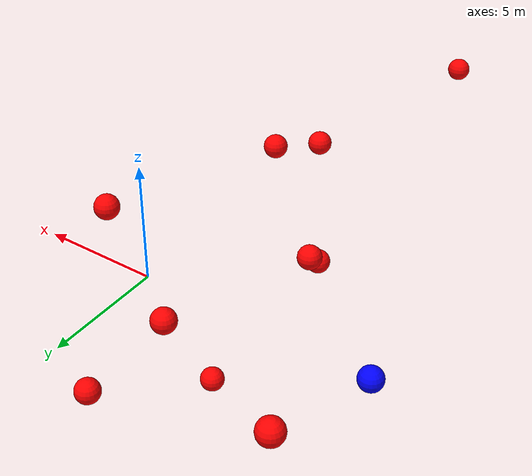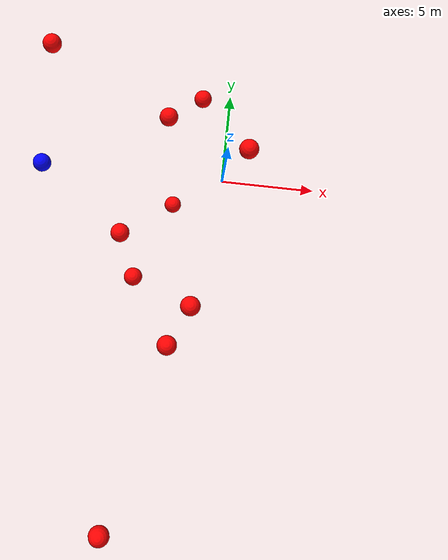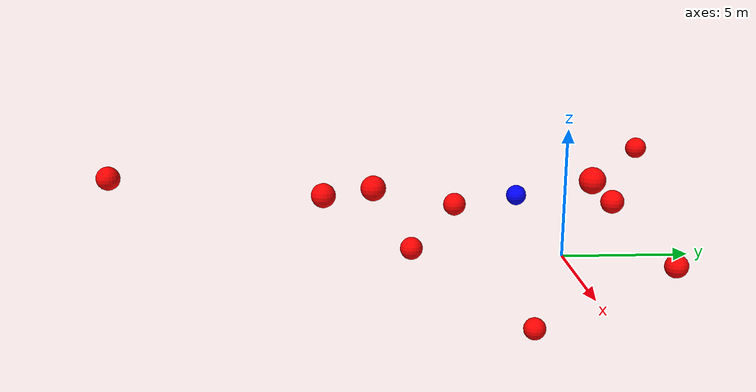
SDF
<?xml version="1.0" ?>
<sdf version="1.8">
    <world name="3d_world">
        <physics name="1ms" type="ode">
            <max_step_size>0.001</max_step_size>
            <real_time_factor>1.0</real_time_factor>
            <real_time_update_rate>1000.0</real_time_update_rate>
        </physics>
        <gravity>0 0 0</gravity>

        <plugin
            filename="gz-sim-physics-system"
            name="gz::sim::v8::systems::Physics">
        </plugin>
        <plugin
            filename="libignition-gazebo-user-commands-system.so"
            name="ignition::gazebo::systems::UserCommands">
        </plugin>
        <plugin
            filename="gz-sim-scene-broadcaster-system"
            name="gz::sim::systems::SceneBroadcaster">
        </plugin>
        <plugin
            filename="gz-sim-sensors-system"
            name="gz::sim::systems::Sensors">
            <render_engine>ogre2</render_engine>
        </plugin>

        <light type="directional" name="sun">
            <cast_shadows>true</cast_shadows>
            <pose>0 0 10 0 0 0</pose>
            <diffuse>0.8 0.8 0.8 1</diffuse>
            <specular>0.2 0.2 0.2 1</specular>
            <attenuation>
                <range>1000</range>
                <constant>0.9</constant>
                <linear>0.01</linear>
                <quadratic>0.001</quadratic>
            </attenuation>
            <direction>-0.5 0.1 -0.9</direction>
        </light>

        <!-- AGENTE -->
        <model name='agente' canonical_link='chassis'>
            <pose relative_to='world'>-10.0 0 0.0 0 0 0</pose>
            <link name='chassis'>
                <pose relative_to='__model__'>0.0 0 0.0 0 0 0</pose>
                <inertial>
                    <mass>1.14395</mass>
                    <inertia>
                        <ixx>0.095329</ixx>
                        <ixy>0</ixy>
                        <ixz>0</ixz>
                        <iyy>0.381317</iyy>
                        <iyz>0</iyz>
                        <izz>0.476646</izz>
                    </inertia>
                </inertial>
                <visual name='visual'>
                    <geometry>
                        <sphere>
                            <radius>0.5</radius>
                        </sphere>
                    </geometry>
                    <material>
                        <ambient>0.0 0.0 1.0 1</ambient>
                        <diffuse>0.0 0.0 1.0 1</diffuse>
                        <specular>0.0 0.0 1.0 1</specular>
                    </material>
                </visual>
                <collision name='collision'>
                    <geometry>
                        <sphere>
                            <radius>0.5</radius>
                        </sphere>
                    </geometry>
                </collision>
                <enable_gravity>false</enable_gravity>
            </link>

            <link name='lidar_link'>
                <pose relative_to='chassis'>0.0 0 0.1 0 0 0</pose>
                <inertial>
                    <mass>0.1</mass>
                    <inertia>
                        <ixx>0.000166667</ixx>
                        <iyy>0.000166667</iyy>
                        <izz>0.000166667</izz>
                    </inertia>
                </inertial>
                <collision name='collision'>
                    <geometry>
                        <cylinder>
                            <radius>0.05</radius>
                            <length>0.1</length>
                        </cylinder>
                    </geometry>
                </collision>
                <visual name='visual'>
                    <geometry>
                        <cylinder>
                            <radius>0.05</radius>
                            <length>0.1</length>
                        </cylinder>
                    </geometry>
                    <material>
                        <ambient>0.0 1.0 0.0 1</ambient>
                        <diffuse>0.0 1.0 0.0 1</diffuse>
                        <specular>0.0 1.0 0.0 1</specular>
                    </material>
                </visual>
                <sensor name="lidar" type="gpu_lidar">
                    <topic>scan</topic>
                    <update_rate>10</update_rate>
                    <lidar>
                        <scan>
                            <horizontal>
                                <samples>5000</samples>
                                <resolution>1</resolution>
                                <min_angle>-3.14159</min_angle>
                                <max_angle>3.14159</max_angle>
                            </horizontal>
                        </scan>
                        <range>
                            <min>0.1</min>
                            <max>10.0</max>
                            <resolution>0.01</resolution>
                        </range>
                    </lidar>
                    <visualize>true</visualize>
                    <always_on>true</always_on>
                    <update_rate>10</update_rate>
                    <pose_frame>lidar</pose_frame>
                </sensor>
                <enable_gravity>false</enable_gravity>
            </link>

            <joint name="lidar_joint" type="fixed">
                <parent>chassis</parent>
                <child>lidar_link</child>
            </joint>

            <plugin
                filename="ignition-gazebo-joint-state-publisher-system"
                name="ignition::gazebo::systems::JointStatePublisher">
            </plugin>
            <plugin
                filename="ignition-gazebo-odometry-publisher-system"
                name="ignition::gazebo::systems::OdometryPublisher">
                <dimensions>3</dimensions>
            </plugin>
            <plugin
                filename="ignition-gazebo-velocity-control-system"
                name="ignition::gazebo::systems::VelocityControl">
                <initial_linear>0.0 0 0</initial_linear>
                <initial_angular>0 0 0.0</initial_angular>
            </plugin>
            <plugin
                filename="libignition-gazebo-pose-publisher-system.so"
                name="ignition::gazebo::systems::PosePublisher">
                <topic>/agente/pose</topic>
                <frame_id>agente</frame_id>
                <update_rate>30</update_rate>
            </plugin>
        </model>

        <!-- OBSTACLE 1 -->
        <model name='obstacle_1' canonical_link='obstacle'>
            <static>false</static>
            <pose relative_to='world'>-9.83 5.85 2.38 0 0 0</pose>
            <link name='obstacle'>
                <pose relative_to='__model__'>0.0 0 0.0 0 0 0</pose>
                <visual name='visual'>
                    <geometry>
                        <sphere>
                            <radius>0.50</radius>
                        </sphere>
                    </geometry>
                    <material>
                        <ambient>1.0 0.0 0.0 1</ambient>
                        <diffuse>1.0 0.0 0.0 1</diffuse>
                        <specular>1.0 0.0 0.0 1</specular>
                    </material>
                </visual>
                <collision name='collision'>
                    <geometry>
                        <sphere>
                            <radius>0.50</radius>
                        </sphere>
                    </geometry>
                </collision>
                <enable_gravity>false</enable_gravity>
            </link>

            <plugin
                filename="ignition-gazebo-velocity-control-system"
                name="ignition::gazebo::systems::VelocityControl">
                <initial_linear>1.73 -0.93 -0.38</initial_linear>
                <initial_angular>0 0 0</initial_angular>
            </plugin>

            <plugin
                filename="ignition-gazebo-odometry-publisher-system"
                name="ignition::gazebo::systems::OdometryPublisher">
                <dimensions>3</dimensions>
            </plugin>
        </model>

        <!-- OBSTACLE 2 -->
        <model name='obstacle_2' canonical_link='obstacle'>
            <static>false</static>
            <pose relative_to='world'>-5.08 -3.69 0.84 0 0 0</pose>
            <link name='obstacle'>
                <pose relative_to='__model__'>0.0 0 0.0 0 0 0</pose>
                <visual name='visual'>
                    <geometry>
                        <sphere>
                            <radius>0.50</radius>
                        </sphere>
                    </geometry>
                    <material>
                        <ambient>1.0 0.0 0.0 1</ambient>
                        <diffuse>1.0 0.0 0.0 1</diffuse>
                        <specular>1.0 0.0 0.0 1</specular>
                    </material>
                </visual>
                <collision name='collision'>
                    <geometry>
                        <sphere>
                            <radius>0.50</radius>
                        </sphere>
                    </geometry>
                </collision>
                <enable_gravity>false</enable_gravity>
            </link>

            <plugin
                filename="ignition-gazebo-velocity-control-system"
                name="ignition::gazebo::systems::VelocityControl">
                <initial_linear>1.72 0.58 -0.13</initial_linear>
                <initial_angular>0 0 0</initial_angular>
            </plugin>

            <plugin
                filename="ignition-gazebo-odometry-publisher-system"
                name="ignition::gazebo::systems::OdometryPublisher">
                <dimensions>3</dimensions>
            </plugin>
        </model>

        <!-- OBSTACLE 3 -->
        <model name='obstacle_3' canonical_link='obstacle'>
            <static>false</static>
            <pose relative_to='world'>-0.96 -7.39 2.59 0 0 0</pose>
            <link name='obstacle'>
                <pose relative_to='__model__'>0.0 0 0.0 0 0 0</pose>
                <visual name='visual'>
                    <geometry>
                        <sphere>
                            <radius>0.50</radius>
                        </sphere>
                    </geometry>
                    <material>
                        <ambient>1.0 0.0 0.0 1</ambient>
                        <diffuse>1.0 0.0 0.0 1</diffuse>
                        <specular>1.0 0.0 0.0 1</specular>
                    </material>
                </visual>
                <collision name='collision'>
                    <geometry>
                        <sphere>
                            <radius>0.50</radius>
                        </sphere>
                    </geometry>
                </collision>
                <enable_gravity>false</enable_gravity>
            </link>

            <plugin
                filename="ignition-gazebo-velocity-control-system"
                name="ignition::gazebo::systems::VelocityControl">
                <initial_linear>-0.00 1.89 -0.66</initial_linear>
                <initial_angular>0 0 0</initial_angular>
            </plugin>

            <plugin
                filename="ignition-gazebo-odometry-publisher-system"
                name="ignition::gazebo::systems::OdometryPublisher">
                <dimensions>3</dimensions>
            </plugin>
        </model>

        <!-- OBSTACLE 4 -->
        <model name='obstacle_4' canonical_link='obstacle'>
            <static>false</static>
            <pose relative_to='world'>1.10 0.72 3.28 0 0 0</pose>
            <link name='obstacle'>
                <pose relative_to='__model__'>0.0 0 0.0 0 0 0</pose>
                <visual name='visual'>
                    <geometry>
                        <sphere>
                            <radius>0.50</radius>
                        </sphere>
                    </geometry>
                    <material>
                        <ambient>1.0 0.0 0.0 1</ambient>
                        <diffuse>1.0 0.0 0.0 1</diffuse>
                        <specular>1.0 0.0 0.0 1</specular>
                    </material>
                </visual>
                <collision name='collision'>
                    <geometry>
                        <sphere>
                            <radius>0.50</radius>
                        </sphere>
                    </geometry>
                </collision>
                <enable_gravity>false</enable_gravity>
            </link>

            <plugin
                filename="ignition-gazebo-velocity-control-system"
                name="ignition::gazebo::systems::VelocityControl">
                <initial_linear>-0.15 -0.17 -0.78</initial_linear>
                <initial_angular>0 0 0</initial_angular>
            </plugin>

            <plugin
                filename="ignition-gazebo-odometry-publisher-system"
                name="ignition::gazebo::systems::OdometryPublisher">
                <dimensions>3</dimensions>
            </plugin>
        </model>

        <!-- OBSTACLE 5 -->
        <model name='obstacle_5' canonical_link='obstacle'>
            <static>false</static>
            <pose relative_to='world'>-2.72 -0.34 -4.21 0 0 0</pose>
            <link name='obstacle'>
                <pose relative_to='__model__'>0.0 0 0.0 0 0 0</pose>
                <visual name='visual'>
                    <geometry>
                        <sphere>
                            <radius>0.50</radius>
                        </sphere>
                    </geometry>
                    <material>
                        <ambient>1.0 0.0 0.0 1</ambient>
                        <diffuse>1.0 0.0 0.0 1</diffuse>
                        <specular>1.0 0.0 0.0 1</specular>
                    </material>
                </visual>
                <collision name='collision'>
                    <geometry>
                        <sphere>
                            <radius>0.50</radius>
                        </sphere>
                    </geometry>
                </collision>
                <enable_gravity>false</enable_gravity>
            </link>

            <plugin
                filename="ignition-gazebo-velocity-control-system"
                name="ignition::gazebo::systems::VelocityControl">
                <initial_linear>0.81 0.08 0.98</initial_linear>
                <initial_angular>0 0 0</initial_angular>
            </plugin>

            <plugin
                filename="ignition-gazebo-odometry-publisher-system"
                name="ignition::gazebo::systems::OdometryPublisher">
                <dimensions>3</dimensions>
            </plugin>
        </model>

        <!-- OBSTACLE 6 -->
        <model name='obstacle_6' canonical_link='obstacle'>
            <static>false</static>
            <pose relative_to='world'>-1.90 -9.38 2.09 0 0 0</pose>
            <link name='obstacle'>
                <pose relative_to='__model__'>0.0 0 0.0 0 0 0</pose>
                <visual name='visual'>
                    <geometry>
                        <sphere>
                            <radius>0.50</radius>
                        </sphere>
                    </geometry>
                    <material>
                        <ambient>1.0 0.0 0.0 1</ambient>
                        <diffuse>1.0 0.0 0.0 1</diffuse>
                        <specular>1.0 0.0 0.0 1</specular>
                    </material>
                </visual>
                <collision name='collision'>
                    <geometry>
                        <sphere>
                            <radius>0.50</radius>
                        </sphere>
                    </geometry>
                </collision>
                <enable_gravity>false</enable_gravity>
            </link>

            <plugin
                filename="ignition-gazebo-velocity-control-system"
                name="ignition::gazebo::systems::VelocityControl">
                <initial_linear>0.32 1.93 -0.43</initial_linear>
                <initial_angular>0 0 0</initial_angular>
            </plugin>

            <plugin
                filename="ignition-gazebo-odometry-publisher-system"
                name="ignition::gazebo::systems::OdometryPublisher">
                <dimensions>3</dimensions>
            </plugin>
        </model>

        <!-- OBSTACLE 7 -->
        <model name='obstacle_7' canonical_link='obstacle'>
            <static>false</static>
            <pose relative_to='world'>-1.55 5.25 -1.04 0 0 0</pose>
            <link name='obstacle'>
                <pose relative_to='__model__'>0.0 0 0.0 0 0 0</pose>
                <visual name='visual'>
                    <geometry>
                        <sphere>
                            <radius>0.50</radius>
                        </sphere>
                    </geometry>
                    <material>
                        <ambient>1.0 0.0 0.0 1</ambient>
                        <diffuse>1.0 0.0 0.0 1</diffuse>
                        <specular>1.0 0.0 0.0 1</specular>
                    </material>
                </visual>
                <collision name='collision'>
                    <geometry>
                        <sphere>
                            <radius>0.50</radius>
                        </sphere>
                    </geometry>
                </collision>
                <enable_gravity>false</enable_gravity>
            </link>

            <plugin
                filename="ignition-gazebo-velocity-control-system"
                name="ignition::gazebo::systems::VelocityControl">
                <initial_linear>1.04 -0.91 0.18</initial_linear>
                <initial_angular>0 0 0</initial_angular>
            </plugin>

            <plugin
                filename="ignition-gazebo-odometry-publisher-system"
                name="ignition::gazebo::systems::OdometryPublisher">
                <dimensions>3</dimensions>
            </plugin>
        </model>

        <!-- OBSTACLE 8 -->
        <model name='obstacle_8' canonical_link='obstacle'>
            <static>false</static>
            <pose relative_to='world'>-3.23 2.85 1.34 0 0 0</pose>
            <link name='obstacle'>
                <pose relative_to='__model__'>0.0 0 0.0 0 0 0</pose>
                <visual name='visual'>
                    <geometry>
                        <sphere>
                            <radius>0.50</radius>
                        </sphere>
                    </geometry>
                    <material>
                        <ambient>1.0 0.0 0.0 1</ambient>
                        <diffuse>1.0 0.0 0.0 1</diffuse>
                        <specular>1.0 0.0 0.0 1</specular>
                    </material>
                </visual>
                <collision name='collision'>
                    <geometry>
                        <sphere>
                            <radius>0.50</radius>
                        </sphere>
                    </geometry>
                </collision>
                <enable_gravity>false</enable_gravity>
            </link>

            <plugin
                filename="ignition-gazebo-velocity-control-system"
                name="ignition::gazebo::systems::VelocityControl">
                <initial_linear>-0.72 -1.35 -0.64</initial_linear>
                <initial_angular>0 0 0</initial_angular>
            </plugin>

            <plugin
                filename="ignition-gazebo-odometry-publisher-system"
                name="ignition::gazebo::systems::OdometryPublisher">
                <dimensions>3</dimensions>
            </plugin>
        </model>

        <!-- OBSTACLE 9 -->
        <model name='obstacle_9' canonical_link='obstacle'>
            <static>false</static>
            <pose relative_to='world'>-4.27 -5.65 -0.93 0 0 0</pose>
            <link name='obstacle'>
                <pose relative_to='__model__'>0.0 0 0.0 0 0 0</pose>
                <visual name='visual'>
                    <geometry>
                        <sphere>
                            <radius>0.50</radius>
                        </sphere>
                    </geometry>
                    <material>
                        <ambient>1.0 0.0 0.0 1</ambient>
                        <diffuse>1.0 0.0 0.0 1</diffuse>
                        <specular>1.0 0.0 0.0 1</specular>
                    </material>
                </visual>
                <collision name='collision'>
                    <geometry>
                        <sphere>
                            <radius>0.50</radius>
                        </sphere>
                    </geometry>
                </collision>
                <enable_gravity>false</enable_gravity>
            </link>

            <plugin
                filename="ignition-gazebo-velocity-control-system"
                name="ignition::gazebo::systems::VelocityControl">
                <initial_linear>1.66 0.83 0.14</initial_linear>
                <initial_angular>0 0 0</initial_angular>
            </plugin>

            <plugin
                filename="ignition-gazebo-odometry-publisher-system"
                name="ignition::gazebo::systems::OdometryPublisher">
                <dimensions>3</dimensions>
            </plugin>
        </model>

        <!-- OBSTACLE 10 -->
        <model name='obstacle_10' canonical_link='obstacle'>
            <static>false</static>
            <pose relative_to='world'>-3.98 -18.44 2.42 0 0 0</pose>
            <link name='obstacle'>
                <pose relative_to='__model__'>0.0 0 0.0 0 0 0</pose>
                <visual name='visual'>
                    <geometry>
                        <sphere>
                            <radius>0.50</radius>
                        </sphere>
                    </geometry>
                    <material>
                        <ambient>1.0 0.0 0.0 1</ambient>
                        <diffuse>1.0 0.0 0.0 1</diffuse>
                        <specular>1.0 0.0 0.0 1</specular>
                    </material>
                </visual>
                <collision name='collision'>
                    <geometry>
                        <sphere>
                            <radius>0.50</radius>
                        </sphere>
                    </geometry>
                </collision>
                <enable_gravity>false</enable_gravity>
            </link>

            <plugin
                filename="ignition-gazebo-velocity-control-system"
                name="ignition::gazebo::systems::VelocityControl">
                <initial_linear>0.40 1.94 -0.25</initial_linear>
                <initial_angular>0 0 0</initial_angular>
            </plugin>

            <plugin
                filename="ignition-gazebo-odometry-publisher-system"
                name="ignition::gazebo::systems::OdometryPublisher">
                <dimensions>3</dimensions>
            </plugin>
        </model>

    </world>
</sdf>
